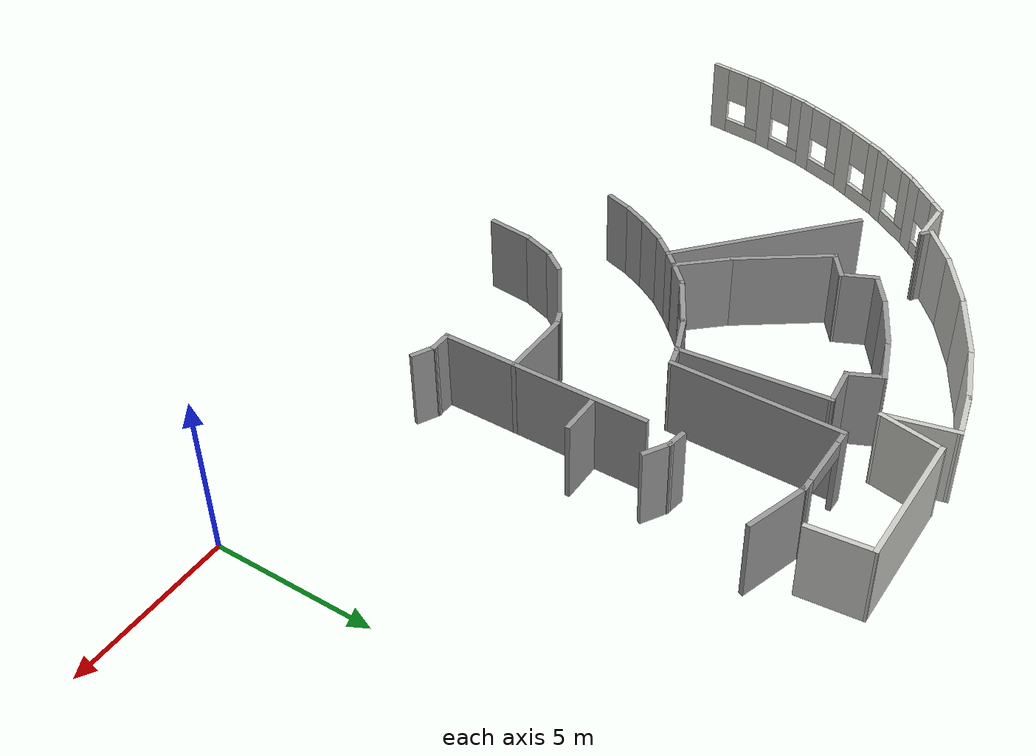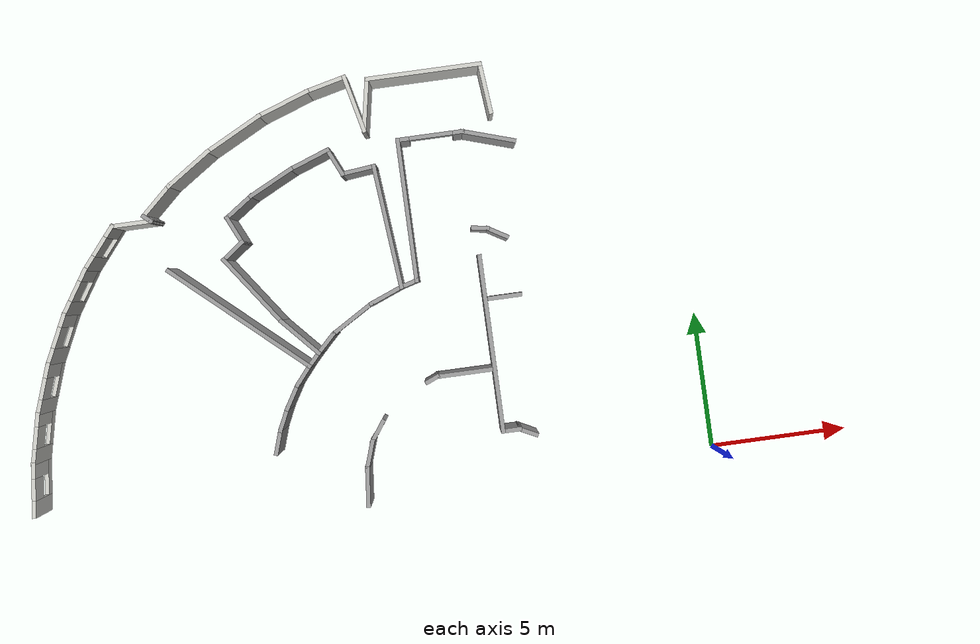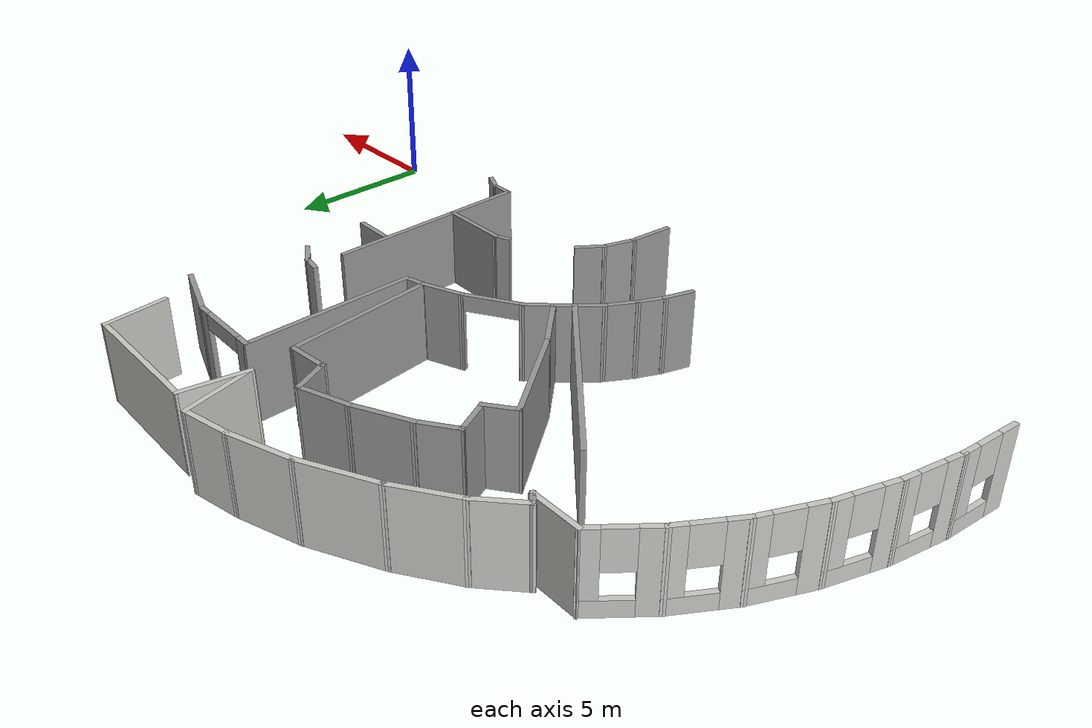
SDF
<sdf version="1.7">
 <model name="model">
  <pose>-4.1341 -0.059214 0 0 -0 0</pose>
  <link name="Wall_101">
   <collision name="Wall_101_Collision">
    <geometry><box><size>0.462824 0.15 2.5</size></box></geometry>
    <pose>0 0 1.25 0 -0 0</pose>
   </collision>
   <visual name="Wall_101_Visual">
    <pose>0 0 1.25 0 -0 0</pose>
    <geometry><box><size>0.462824 0.15 2.5</size></box></geometry>
    <material>
     <script><uri>file://media/materials/scripts/gazebo.material</uri><name>Gazebo/Grey</name></script>
     <ambient>1 1 1 1</ambient>
    </material>
    <meta><layer>0</layer></meta>
   </visual>
   <pose>-15.2732 11.179 0 0 -0 2.42042</pose>
  </link>
  <link name="Wall_102">
   <collision name="Wall_102_Collision">
    <geometry><box><size>1.56641 0.15 2.5</size></box></geometry>
    <pose>0 0 1.25 0 -0 0</pose>
   </collision>
   <visual name="Wall_102_Visual">
    <pose>0 0 1.25 0 -0 0</pose>
    <geometry><box><size>1.56641 0.15 2.5</size></box></geometry>
    <material>
     <script><uri>file://media/materials/scripts/gazebo.material</uri><name>Gazebo/CeilingTiled</name></script>
     <ambient>0.964706 1 0.972549 1</ambient>
    </material>
    <meta><layer>0</layer></meta>
   </visual>
   <pose>-14.8674 11.7595 0 0 -0 0.739454</pose>
  </link>
  <link name="Wall_103">
   <collision name="Wall_103_Collision">
    <geometry><box><size>2.03182 0.15 2.5</size></box></geometry>
    <pose>0 0 1.25 0 -0 0</pose>
   </collision>
   <visual name="Wall_103_Visual">
    <pose>0 0 1.25 0 -0 0</pose>
    <geometry><box><size>2.03182 0.15 2.5</size></box></geometry>
    <material>
     <script><uri>file://media/materials/scripts/gazebo.material</uri><name>Gazebo/CeilingTiled</name></script>
     <ambient>0.964706 1 0.972549 1</ambient>
    </material>
    <meta><layer>0</layer></meta>
   </visual>
   <pose>-13.5621 12.76 0 0 -0 0.589698</pose>
  </link>
  <link name="Wall_104">
   <collision name="Wall_104_Collision">
    <geometry><box><size>2.39757 0.15 2.5</size></box></geometry>
    <pose>0 0 1.25 0 -0 0</pose>
   </collision>
   <visual name="Wall_104_Visual">
    <pose>0 0 1.25 0 -0 0</pose>
    <geometry><box><size>2.39757 0.15 2.5</size></box></geometry>
    <material>
     <script><uri>file://media/materials/scripts/gazebo.material</uri><name>Gazebo/CeilingTiled</name></script>
     <ambient>0.964706 1 0.972549 1</ambient>
    </material>
    <meta><layer>0</layer></meta>
   </visual>
   <pose>-11.7796 13.795 0 0 -0 0.472801</pose>
  </link>
  <link name="Wall_106">
   <collision name="Wall_106_Collision">
    <geometry><box><size>2.09081 0.15 2.5</size></box></geometry>
    <pose>0 0 1.25 0 -0 0</pose>
   </collision>
   <visual name="Wall_106_Visual">
    <pose>0 0 1.25 0 -0 0</pose>
    <geometry><box><size>2.09081 0.15 2.5</size></box></geometry>
    <material>
     <script><uri>file://media/materials/scripts/gazebo.material</uri><name>Gazebo/CeilingTiled</name></script>
     <ambient>0.964706 1 0.972549 1</ambient>
    </material>
    <meta><layer>0</layer></meta>
   </visual>
   <pose>-9.86354 14.6283 0 0 -0 0.337731</pose>
  </link>
  <link name="Wall_107">
   <collision name="Wall_107_Collision">
    <geometry><box><size>1.57879 0.15 2.5</size></box></geometry>
    <pose>0 0 1.25 0 -0 0</pose>
   </collision>
   <visual name="Wall_107_Visual">
    <pose>0 0 1.25 0 -0 0</pose>
    <geometry><box><size>1.57879 0.15 2.5</size></box></geometry>
    <material>
     <script><uri>file://media/materials/scripts/gazebo.material</uri><name>Gazebo/CeilingTiled</name></script>
     <ambient>0.964706 1 0.972549 1</ambient>
    </material>
    <meta><layer>0</layer></meta>
   </visual>
   <pose>-8.2523 15.1124 0 0 -0 0.229576</pose>
  </link>
  <link name="Wall_108">
   <collision name="Wall_108_Collision">
    <geometry><box><size>2.19881 0.15 2.5</size></box></geometry>
    <pose>0 0 1.25 0 -0 0</pose>
   </collision>
   <visual name="Wall_108_Visual">
    <pose>0 0 1.25 0 -0 0</pose>
    <geometry><box><size>2.19881 0.15 2.5</size></box></geometry>
    <material>
     <script><uri>file://media/materials/scripts/gazebo.material</uri><name>Gazebo/CeilingTiled</name></script>
     <ambient>0.964706 1 0.972549 1</ambient>
    </material>
    <meta><layer>0</layer></meta>
   </visual>
   <pose>-7.32602 14.2769 0 0 -0 -1.34372</pose>
  </link>
  <link name="Wall_109">
   <collision name="Wall_109_Collision">
    <geometry><box><size>1.99778 0.15 2.5</size></box></geometry>
    <pose>0 0 1.25 0 -0 0</pose>
   </collision>
   <visual name="Wall_109_Visual">
    <pose>0 0 1.25 0 -0 0</pose>
    <geometry><box><size>1.99778 0.15 2.5</size></box></geometry>
    <material>
     <script><uri>file://media/materials/scripts/gazebo.material</uri><name>Gazebo/CeilingTiled</name></script>
     <ambient>0.964706 1 0.972549 1</ambient>
    </material>
    <meta><layer>0</layer></meta>
   </visual>
   <pose>-6.92148 14.1861 0 0 -0 1.38143</pose>
  </link>
  <link name="Wall_111">
   <collision name="Wall_111_Collision">
    <geometry><box><size>4.25 0.15 2.5</size></box></geometry>
    <pose>0 0 1.25 0 -0 0</pose>
   </collision>
   <visual name="Wall_111_Visual">
    <pose>0 0 1.25 0 -0 0</pose>
    <geometry><box><size>4.25 0.15 2.5</size></box></geometry>
    <material>
     <script><uri>file://media/materials/scripts/gazebo.material</uri><name>Gazebo/CeilingTiled</name></script>
     <ambient>0.964706 1 0.972549 1</ambient>
    </material>
    <meta><layer>0</layer></meta>
   </visual>
   <pose>-4.69757 15.0935 0 0 -0 0</pose>
  </link>
  <link name="Wall_112">
   <collision name="Wall_112_Collision">
    <geometry><box><size>1.93197 0.15 2.5</size></box></geometry>
    <pose>0 0 1.25 0 -0 0</pose>
   </collision>
   <visual name="Wall_112_Visual">
    <pose>0 0 1.25 0 -0 0</pose>
    <geometry><box><size>1.93197 0.15 2.5</size></box></geometry>
    <material>
     <script><uri>file://media/materials/scripts/gazebo.material</uri><name>Gazebo/CeilingTiled</name></script>
     <ambient>0.964706 1 0.972549 1</ambient>
    </material>
    <meta><layer>0</layer></meta>
   </visual>
   <pose>-2.56312 14.2065 0 0 -0 -1.47587</pose>
  </link>
  <link name="Wall_135">
   <collision name="Wall_135_Collision">
    <geometry><box><size>6.29486 0.15 2.5</size></box></geometry>
    <pose>0 0 1.25 0 -0 0</pose>
   </collision>
   <visual name="Wall_135_Visual">
    <pose>0 0 1.25 0 -0 0</pose>
    <geometry><box><size>6.29486 0.15 2.5</size></box></geometry>
    <material>
     <script><uri>file://media/materials/scripts/gazebo.material</uri><name>Gazebo/Grey</name></script>
     <ambient>0.929412 0.960784 0.933333 1</ambient>
    </material>
    <meta><layer>0</layer></meta>
   </visual>
   <pose>-12.4823 7.17089 0 0 -0 -0.727536</pose>
  </link>
  <link name="Wall_136">
   <collision name="Wall_136_Collision">
    <geometry><box><size>0.730094 0.15 2.5</size></box></geometry>
    <pose>0 0 1.25 0 -0 0</pose>
   </collision>
   <visual name="Wall_136_Visual">
    <pose>0 0 1.25 0 -0 0</pose>
    <geometry><box><size>0.730094 0.15 2.5</size></box></geometry>
    <material>
     <script><uri>file://media/materials/scripts/gazebo.material</uri><name>Gazebo/Grey</name></script>
     <ambient>1 1 1 1</ambient>
    </material>
    <meta><layer>0</layer></meta>
   </visual>
   <pose>-9.98937 5.33923 0 0 -0 0.817645</pose>
  </link>
  <link name="Wall_139">
   <collision name="Wall_139_Collision">
    <geometry><box><size>0.967544 0.15 2.5</size></box></geometry>
    <pose>0 0 1.25 0 -0 0</pose>
   </collision>
   <visual name="Wall_139_Visual">
    <pose>0 0 1.25 0 -0 0</pose>
    <geometry><box><size>0.967544 0.15 2.5</size></box></geometry>
    <material>
     <script><uri>file://media/materials/scripts/gazebo.material</uri><name>Gazebo/Grey</name></script>
     <ambient>0.929412 0.960784 0.933333 1</ambient>
    </material>
    <meta><layer>0</layer></meta>
   </visual>
   <pose>-10.4508 4.81478 0 0 -0 -2.27001</pose>
  </link>
  <link name="Wall_140">
   <collision name="Wall_140_Collision">
    <geometry><box><size>1.07537 0.15 2.5</size></box></geometry>
    <pose>0 0 1.25 0 -0 0</pose>
   </collision>
   <visual name="Wall_140_Visual">
    <pose>0 0 1.25 0 -0 0</pose>
    <geometry><box><size>1.07537 0.15 2.5</size></box></geometry>
    <material>
     <script><uri>file://media/materials/scripts/gazebo.material</uri><name>Gazebo/Grey</name></script>
     <ambient>0.929412 0.960784 0.933333 1</ambient>
    </material>
    <meta><layer>0</layer></meta>
   </visual>
   <pose>-10.952 4.10518 0 0 -0 -2.11122</pose>
  </link>
  <link name="Wall_141">
   <collision name="Wall_141_Collision">
    <geometry><box><size>0.954554 0.15 2.5</size></box></geometry>
    <pose>0 0 1.25 0 -0 0</pose>
   </collision>
   <visual name="Wall_141_Visual">
    <pose>0 0 1.25 0 -0 0</pose>
    <geometry><box><size>0.954554 0.15 2.5</size></box></geometry>
    <material>
     <script><uri>file://media/materials/scripts/gazebo.material</uri><name>Gazebo/Grey</name></script>
     <ambient>0.929412 0.960784 0.933333 1</ambient>
    </material>
    <meta><layer>0</layer></meta>
   </visual>
   <pose>-11.362 3.34474 0 0 -0 -2.01239</pose>
  </link>
  <link name="Wall_142">
   <collision name="Wall_142_Collision">
    <geometry><box><size>0.998979 0.15 2.5</size></box></geometry>
    <pose>0 0 1.25 0 -0 0</pose>
   </collision>
   <visual name="Wall_142_Visual">
    <pose>0 0 1.25 0 -0 0</pose>
    <geometry><box><size>0.998979 0.15 2.5</size></box></geometry>
    <material>
     <script><uri>file://media/materials/scripts/gazebo.material</uri><name>Gazebo/Grey</name></script>
     <ambient>0.929412 0.960784 0.933333 1</ambient>
    </material>
    <meta><layer>0</layer></meta>
   </visual>
   <pose>-11.6661 2.57769 0 0 -0 -1.88762</pose>
  </link>
  <link name="Wall_260">
   <collision name="Wall_260_Collision">
    <geometry><box><size>1.91837 0.15 2.5</size></box></geometry>
    <pose>0 0 1.25 0 -0 0</pose>
   </collision>
   <visual name="Wall_260_Visual">
    <pose>0 0 1.25 0 -0 0</pose>
    <geometry><box><size>1.91837 0.15 2.5</size></box></geometry>
    <material>
     <script><uri>file://media/materials/scripts/gazebo.material</uri><name>Gazebo/Grey</name></script>
     <ambient>1 1 1 1</ambient>
    </material>
    <meta><layer>0</layer></meta>
   </visual>
   <pose>-10.3841 6.20662 0 0 -0 2.30601</pose>
  </link>
  <link name="Wall_261">
   <collision name="Wall_261_Collision">
    <geometry><box><size>3.18479 0.15 2.5</size></box></geometry>
    <pose>0 0 1.25 0 -0 0</pose>
   </collision>
   <visual name="Wall_261_Visual">
    <pose>0 0 1.25 0 -0 0</pose>
    <geometry><box><size>3.18479 0.15 2.5</size></box></geometry>
    <material>
     <script><uri>file://media/materials/scripts/gazebo.material</uri><name>Gazebo/Grey</name></script>
     <ambient>1 1 1 1</ambient>
    </material>
    <meta><layer>0</layer></meta>
   </visual>
   <pose>-11.8566 8.09894 0 0 -0 2.18902</pose>
  </link>
  <link name="Wall_262">
   <collision name="Wall_262_Collision">
    <geometry><box><size>1.06788 0.15 2.5</size></box></geometry>
    <pose>0 0 1.25 0 -0 0</pose>
   </collision>
   <visual name="Wall_262_Visual">
    <pose>0 0 1.25 0 -0 0</pose>
    <geometry><box><size>1.06788 0.15 2.5</size></box></geometry>
    <material>
     <script><uri>file://media/materials/scripts/gazebo.material</uri><name>Gazebo/Grey</name></script>
     <ambient>1 1 1 1</ambient>
    </material>
    <meta><layer>0</layer></meta>
   </visual>
   <pose>-12.3657 9.60659 0 0 -0 0.631974</pose>
  </link>
  <link name="Wall_264">
   <collision name="Wall_264_Collision">
    <geometry><box><size>1.17754 0.15 2.5</size></box></geometry>
    <pose>0 0 1.25 0 -0 0</pose>
   </collision>
   <visual name="Wall_264_Visual">
    <pose>0 0 1.25 0 -0 0</pose>
    <geometry><box><size>1.17754 0.15 2.5</size></box></geometry>
    <material>
     <script><uri>file://media/materials/scripts/gazebo.material</uri><name>Gazebo/Grey</name></script>
     <ambient>1 1 1 1</ambient>
    </material>
    <meta><layer>0</layer></meta>
   </visual>
   <pose>-12.207 10.3459 0 0 -0 1.99515</pose>
  </link>
  <link name="Wall_265">
   <collision name="Wall_265_Collision">
    <geometry><box><size>1.31922 0.15 2.5</size></box></geometry>
    <pose>0 0 1.25 0 -0 0</pose>
   </collision>
   <visual name="Wall_265_Visual">
    <pose>0 0 1.25 0 -0 0</pose>
    <geometry><box><size>1.31922 0.15 2.5</size></box></geometry>
    <material>
     <script><uri>file://media/materials/scripts/gazebo.material</uri><name>Gazebo/Grey</name></script>
     <ambient>1 1 1 1</ambient>
    </material>
    <meta><layer>0</layer></meta>
   </visual>
   <pose>-11.9375 11.1464 0 0 -0 0.604599</pose>
  </link>
  <link name="Wall_266">
   <collision name="Wall_266_Collision">
    <geometry><box><size>1.88646 0.15 2.5</size></box></geometry>
    <pose>0 0 1.25 0 -0 0</pose>
   </collision>
   <visual name="Wall_266_Visual">
    <pose>0 0 1.25 0 -0 0</pose>
    <geometry><box><size>1.88646 0.15 2.5</size></box></geometry>
    <material>
     <script><uri>file://media/materials/scripts/gazebo.material</uri><name>Gazebo/Grey</name></script>
     <ambient>1 1 1 1</ambient>
    </material>
    <meta><layer>0</layer></meta>
   </visual>
   <pose>-10.6783 11.8635 0 0 -0 0.459143</pose>
  </link>
  <link name="Wall_267">
   <collision name="Wall_267_Collision">
    <geometry><box><size>1.6383 0.15 2.5</size></box></geometry>
    <pose>0 0 1.25 0 -0 0</pose>
   </collision>
   <visual name="Wall_267_Visual">
    <pose>0 0 1.25 0 -0 0</pose>
    <geometry><box><size>1.6383 0.15 2.5</size></box></geometry>
    <material>
     <script><uri>file://media/materials/scripts/gazebo.material</uri><name>Gazebo/Grey</name></script>
     <ambient>1 1 1 1</ambient>
    </material>
    <meta><layer>0</layer></meta>
   </visual>
   <pose>-9.20034 12.5019 0 0 -0 0.347767</pose>
  </link>
  <link name="Wall_268">
   <collision name="Wall_268_Collision">
    <geometry><box><size>1.16759 0.15 2.5</size></box></geometry>
    <pose>0 0 1.25 0 -0 0</pose>
   </collision>
   <visual name="Wall_268_Visual">
    <pose>0 0 1.25 0 -0 0</pose>
    <geometry><box><size>1.16759 0.15 2.5</size></box></geometry>
    <material>
     <script><uri>file://media/materials/scripts/gazebo.material</uri><name>Gazebo/Grey</name></script>
     <ambient>1 1 1 1</ambient>
    </material>
    <meta><layer>0</layer></meta>
   </visual>
   <pose>-8.29086 12.292 0 0 -0 -1.14559</pose>
  </link>
  <link name="Wall_269">
   <collision name="Wall_269_Collision">
    <geometry><box><size>1.31082 0.15 2.5</size></box></geometry>
    <pose>0 0 1.25 0 -0 0</pose>
   </collision>
   <visual name="Wall_269_Visual">
    <pose>0 0 1.25 0 -0 0</pose>
    <geometry><box><size>1.31082 0.15 2.5</size></box></geometry>
    <material>
     <script><uri>file://media/materials/scripts/gazebo.material</uri><name>Gazebo/Grey</name></script>
     <ambient>1 1 1 1</ambient>
    </material>
    <meta><layer>0</layer></meta>
   </visual>
   <pose>-7.5038 11.8897 0 0 -0 0.105666</pose>
  </link>
  <link name="Wall_270">
   <collision name="Wall_270_Collision">
    <geometry><box><size>4.61065 0.15 2.5</size></box></geometry>
    <pose>0 0 1.25 0 -0 0</pose>
   </collision>
   <visual name="Wall_270_Visual">
    <pose>0 0 1.25 0 -0 0</pose>
    <geometry><box><size>4.61065 0.15 2.5</size></box></geometry>
    <material>
     <script><uri>file://media/materials/scripts/gazebo.material</uri><name>Gazebo/Grey</name></script>
     <ambient>1 1 1 1</ambient>
    </material>
    <meta><layer>0</layer></meta>
   </visual>
   <pose>-6.7255 9.72973 0 0 -0 -1.48049</pose>
  </link>
  <link name="Wall_271">
   <collision name="Wall_271_Collision">
    <geometry><box><size>1.39068 0.15 2.5</size></box></geometry>
    <pose>0 0 1.25 0 -0 0</pose>
   </collision>
   <visual name="Wall_271_Visual">
    <pose>0 0 1.25 0 -0 0</pose>
    <geometry><box><size>1.39068 0.15 2.5</size></box></geometry>
    <material>
     <script><uri>file://media/materials/scripts/gazebo.material</uri><name>Gazebo/Grey</name></script>
     <ambient>1 1 1 1</ambient>
    </material>
    <meta><layer>0</layer></meta>
   </visual>
   <pose>-7.10153 7.28112 0 0 -0 -2.76632</pose>
  </link>
  <link name="Wall_273">
   <collision name="Wall_273_Collision">
    <geometry><box><size>0.75 0.15 2.5</size></box></geometry>
    <pose>0 0 1.25 0 -0 0</pose>
   </collision>
   <visual name="Wall_273_Visual">
    <pose>0 0 1.25 0 -0 0</pose>
    <geometry><box><size>0.75 0.15 2.5</size></box></geometry>
    <material>
     <script><uri>file://media/materials/scripts/gazebo.material</uri><name>Gazebo/Grey</name></script>
     <ambient>1 1 1 1</ambient>
    </material>
    <meta><layer>0</layer></meta>
   </visual>
   <pose>-6.23458 7.58613 0 0 -0 0.261799</pose>
  </link>
  <link name="Wall_275">
   <collision name="Wall_275_Collision">
    <geometry><box><size>5.25 0.15 2.5</size></box></geometry>
    <pose>0 0 1.25 0 -0 0</pose>
   </collision>
   <visual name="Wall_275_Visual">
    <pose>0 0 1.25 0 -0 0</pose>
    <geometry><box><size>5.25 0.15 2.5</size></box></geometry>
    <material>
     <script><uri>file://media/materials/scripts/gazebo.material</uri><name>Gazebo/Grey</name></script>
     <ambient>1 1 1 1</ambient>
    </material>
    <meta><layer>0</layer></meta>
   </visual>
   <pose>-5.9448 10.2138 0 0 -0 1.5708</pose>
  </link>
  <link name="Wall_276">
   <pose>-4.7698 12.7638 0 0 -0 0</pose>
   <visual name="Wall_276_Visual_0">
    <pose>-1.00458 0 1.25 0 -0 0</pose>
    <geometry><box><size>0.490836 0.15 2.5</size></box></geometry>
    <material>
     <script><uri>file://media/materials/scripts/gazebo.material</uri><name>Gazebo/Grey</name></script>
     <ambient>1 1 1 1</ambient>
    </material>
    <meta><layer>0</layer></meta>
   </visual>
   <collision name="Wall_276_Collision_0">
    <geometry><box><size>0.490836 0.15 2.5</size></box></geometry>
    <pose>-1.00458 0 1.25 0 -0 0</pose>
   </collision>
   <visual name="Wall_276_Visual_1">
    <pose>1.03647 0 1.25 0 -0 0</pose>
    <geometry><box><size>0.427052 0.15 2.5</size></box></geometry>
    <material>
     <script><uri>file://media/materials/scripts/gazebo.material</uri><name>Gazebo/Grey</name></script>
     <ambient>1 1 1 1</ambient>
    </material>
    <meta><layer>0</layer></meta>
   </visual>
   <collision name="Wall_276_Collision_1">
    <geometry><box><size>0.427052 0.15 2.5</size></box></geometry>
    <pose>1.03647 0 1.25 0 -0 0</pose>
   </collision>
   <visual name="Wall_276_Visual_2">
    <pose>0.031892 0 2.25 0 -0 0</pose>
    <geometry><box><size>1.58211 0.15 0.5</size></box></geometry>
    <material>
     <script><uri>file://media/materials/scripts/gazebo.material</uri><name>Gazebo/Grey</name></script>
     <ambient>1 1 1 1</ambient>
    </material>
    <meta><layer>0</layer></meta>
   </visual>
   <collision name="Wall_276_Collision_2">
    <geometry><box><size>1.58211 0.15 0.5</size></box></geometry>
    <pose>0.031892 0 2.25 0 -0 0</pose>
   </collision>
  </link>
  <link name="Wall_277">
   <collision name="Wall_277_Collision">
    <geometry><box><size>2.04723 0.15 2.5</size></box></geometry>
    <pose>0 0 1.25 0 -0 0</pose>
   </collision>
   <visual name="Wall_277_Visual">
    <pose>0 0 1.25 0 -0 0</pose>
    <geometry><box><size>2.04723 0.15 2.5</size></box></geometry>
    <material>
     <script><uri>file://media/materials/scripts/gazebo.material</uri><name>Gazebo/Grey</name></script>
     <ambient>1 1 1 1</ambient>
    </material>
    <meta><layer>0</layer></meta>
   </visual>
   <pose>-2.69124 12.4749 0 0 -0 -0.30942</pose>
  </link>
  <link name="Wall_288">
   <collision name="Wall_288_Collision">
    <geometry><box><size>0.6604 0.15 2.5</size></box></geometry>
    <pose>0 0 1.25 0 -0 0</pose>
   </collision>
   <visual name="Wall_288_Visual">
    <pose>0 0 1.25 0 -0 0</pose>
    <geometry><box><size>0.6604 0.15 2.5</size></box></geometry>
    <material>
     <script><uri>file://media/materials/scripts/gazebo.material</uri><name>Gazebo/Grey</name></script>
     <ambient>1 1 1 1</ambient>
    </material>
    <meta><layer>0</layer></meta>
   </visual>
   <pose>-3.42046 9.22796 0 0 -0 -0.168832</pose>
  </link>
  <link name="Wall_289">
   <collision name="Wall_289_Collision">
    <geometry><box><size>0.913863 0.15 2.5</size></box></geometry>
    <pose>0 0 1.25 0 -0 0</pose>
   </collision>
   <visual name="Wall_289_Visual">
    <pose>0 0 1.25 0 -0 0</pose>
    <geometry><box><size>0.913863 0.15 2.5</size></box></geometry>
    <material>
     <script><uri>file://media/materials/scripts/gazebo.material</uri><name>Gazebo/Grey</name></script>
     <ambient>1 1 1 1</ambient>
    </material>
    <meta><layer>0</layer></meta>
   </visual>
   <pose>-2.84013 8.99069 0 0 -0 -0.534001</pose>
  </link>
  <link name="Wall_297">
   <collision name="Wall_297_Collision">
    <geometry><box><size>6.5 0.15 2.5</size></box></geometry>
    <pose>0 0 1.25 0 -0 0</pose>
   </collision>
   <visual name="Wall_297_Visual">
    <pose>0 0 1.25 0 -0 0</pose>
    <geometry><box><size>6.5 0.15 2.5</size></box></geometry>
    <material>
     <script><uri>file://media/materials/scripts/gazebo.material</uri><name>Gazebo/Grey</name></script>
     <ambient>1 1 1 1</ambient>
    </material>
    <meta><layer>0</layer></meta>
   </visual>
   <pose>-3.58502 5.03881 0 0 -0 -1.5708</pose>
  </link>
  <link name="Wall_299">
   <collision name="Wall_299_Collision">
    <geometry><box><size>1.25 0.15 2.5</size></box></geometry>
    <pose>0 0 1.25 0 -0 0</pose>
   </collision>
   <visual name="Wall_299_Visual">
    <pose>0 0 1.25 0 -0 0</pose>
    <geometry><box><size>1.25 0.15 2.5</size></box></geometry>
    <material>
     <script><uri>file://media/materials/scripts/gazebo.material</uri><name>Gazebo/Grey</name></script>
     <ambient>1 1 1 1</ambient>
    </material>
    <meta><layer>0</layer></meta>
   </visual>
   <pose>-2.87412 6.66507 0 0 -0 0</pose>
  </link>
  <link name="Wall_302">
   <collision name="Wall_302_Collision">
    <geometry><box><size>0.75 0.15 2.5</size></box></geometry>
    <pose>0 0 1.25 0 -0 0</pose>
   </collision>
   <visual name="Wall_302_Visual">
    <pose>0 0 1.25 0 -0 0</pose>
    <geometry><box><size>0.75 0.15 2.5</size></box></geometry>
    <material>
     <script><uri>file://media/materials/scripts/gazebo.material</uri><name>Gazebo/Grey</name></script>
     <ambient>1 1 1 1</ambient>
    </material>
    <meta><layer>0</layer></meta>
   </visual>
   <pose>-3.28503 1.86381 0 0 -0 0</pose>
  </link>
  <link name="Wall_303">
   <collision name="Wall_303_Collision">
    <geometry><box><size>0.787599 0.15 2.5</size></box></geometry>
    <pose>0 0 1.25 0 -0 0</pose>
   </collision>
   <visual name="Wall_303_Visual">
    <pose>0 0 1.25 0 -0 0</pose>
    <geometry><box><size>0.787599 0.15 2.5</size></box></geometry>
    <material>
     <script><uri>file://media/materials/scripts/gazebo.material</uri><name>Gazebo/Grey</name></script>
     <ambient>1 1 1 1</ambient>
    </material>
    <meta><layer>0</layer></meta>
   </visual>
   <pose>-2.70044 1.72013 0 0 -0 -0.467553</pose>
  </link>
  <link name="Wall_327">
   <collision name="Wall_327_Collision">
    <geometry><box><size>1.4791 0.15 2.5</size></box></geometry>
    <pose>0 0 1.25 0 -0 0</pose>
   </collision>
   <visual name="Wall_327_Visual">
    <pose>0 0 1.25 0 -0 0</pose>
    <geometry><box><size>1.4791 0.15 2.5</size></box></geometry>
    <material>
     <script><uri>file://media/materials/scripts/gazebo.material</uri><name>Gazebo/Grey</name></script>
     <ambient>1 1 1 1</ambient>
    </material>
    <meta><layer>0</layer></meta>
   </visual>
   <pose>-8.68567 0.53453 0 0 -0 1.47113</pose>
  </link>
  <link name="Wall_329">
   <collision name="Wall_329_Collision">
    <geometry><box><size>1.14137 0.15 2.5</size></box></geometry>
    <pose>0 0 1.25 0 -0 0</pose>
   </collision>
   <visual name="Wall_329_Visual">
    <pose>0 0 1.25 0 -0 0</pose>
    <geometry><box><size>1.14137 0.15 2.5</size></box></geometry>
    <material>
     <script><uri>file://media/materials/scripts/gazebo.material</uri><name>Gazebo/Grey</name></script>
     <ambient>1 1 1 1</ambient>
    </material>
    <meta><layer>0</layer></meta>
   </visual>
   <pose>-8.46123 1.6655 0 0 -0 1.2457</pose>
  </link>
  <link name="Wall_330">
   <collision name="Wall_330_Collision">
    <geometry><box><size>0.964815 0.15 2.5</size></box></geometry>
    <pose>0 0 1.25 0 -0 0</pose>
   </collision>
   <visual name="Wall_330_Visual">
    <pose>0 0 1.25 0 -0 0</pose>
    <geometry><box><size>0.964815 0.15 2.5</size></box></geometry>
    <material>
     <script><uri>file://media/materials/scripts/gazebo.material</uri><name>Gazebo/Grey</name></script>
     <ambient>1 1 1 1</ambient>
    </material>
    <meta><layer>0</layer></meta>
   </visual>
   <pose>-8.06486 2.46585 0 0 -0 0.946773</pose>
  </link>
  <link name="Wall_332">
   <collision name="Wall_332_Collision">
    <geometry><box><size>0.565063 0.15 2.5</size></box></geometry>
    <pose>0 0 1.25 0 -0 0</pose>
   </collision>
   <visual name="Wall_332_Visual">
    <pose>0 0 1.25 0 -0 0</pose>
    <geometry><box><size>0.565063 0.15 2.5</size></box></geometry>
    <material>
     <script><uri>file://media/materials/scripts/gazebo.material</uri><name>Gazebo/Grey</name></script>
     <ambient>1 1 1 1</ambient>
    </material>
    <meta><layer>0</layer></meta>
   </visual>
   <pose>-5.86289 4.05285 0 0 -0 0.39234</pose>
  </link>
  <link name="Wall_333">
   <collision name="Wall_333_Collision">
    <geometry><box><size>2.23955 0.15 2.5</size></box></geometry>
    <pose>0 0 1.25 0 -0 0</pose>
   </collision>
   <visual name="Wall_333_Visual">
    <pose>0 0 1.25 0 -0 0</pose>
    <geometry><box><size>2.23955 0.15 2.5</size></box></geometry>
    <material>
     <script><uri>file://media/materials/scripts/gazebo.material</uri><name>Gazebo/Grey</name></script>
     <ambient>1 1 1 1</ambient>
    </material>
    <meta><layer>0</layer></meta>
   </visual>
   <pose>-4.62636 4.1322 0 0 -0 0</pose>
  </link>
  <link name="Wall_335">
   <collision name="Wall_335_Collision">
    <geometry><box><size>1 0.15 2.5</size></box></geometry>
    <pose>0 0 1.25 0 -0 0</pose>
   </collision>
   <visual name="Wall_335_Visual">
    <pose>0 0 1.25 0 -0 0</pose>
    <geometry><box><size>1 0.15 2.5</size></box></geometry>
    <material>
     <script><uri>file://media/materials/scripts/gazebo.material</uri><name>Gazebo/Grey</name></script>
     <ambient>1 1 1 1</ambient>
    </material>
    <meta><layer>0</layer></meta>
   </visual>
   <pose>-9.49047 5.85135 0 0 -0 0.785398</pose>
  </link>
  <link name="Wall_336">
   <pose>-8.43433 6.60281 0 0 -0 0.538045</pose>
   <visual name="Wall_336_Visual_0">
    <pose>-0.883843 0 1.25 0 -0 0</pose>
    <geometry><box><size>0.142213 0.15 2.5</size></box></geometry>
    <material>
     <script><uri>file://media/materials/scripts/gazebo.material</uri><name>Gazebo/Grey</name></script>
     <ambient>1 1 1 1</ambient>
    </material>
    <meta><layer>0</layer></meta>
   </visual>
   <collision name="Wall_336_Collision_0">
    <geometry><box><size>0.142213 0.15 2.5</size></box></geometry>
    <pose>-0.883843 0 1.25 0 -0 0</pose>
   </collision>
   <visual name="Wall_336_Visual_1">
    <pose>0.917568 0 1.25 0 -0 0</pose>
    <geometry><box><size>0.074763 0.15 2.5</size></box></geometry>
    <material>
     <script><uri>file://media/materials/scripts/gazebo.material</uri><name>Gazebo/Grey</name></script>
     <ambient>1 1 1 1</ambient>
    </material>
    <meta><layer>0</layer></meta>
   </visual>
   <collision name="Wall_336_Collision_1">
    <geometry><box><size>0.074763 0.15 2.5</size></box></geometry>
    <pose>0.917568 0 1.25 0 -0 0</pose>
   </collision>
   <visual name="Wall_336_Visual_2">
    <pose>0.033725 0 2.25 0 -0 0</pose>
    <geometry><box><size>1.69292 0.15 0.5</size></box></geometry>
    <material>
     <script><uri>file://media/materials/scripts/gazebo.material</uri><name>Gazebo/Grey</name></script>
     <ambient>1 1 1 1</ambient>
    </material>
    <meta><layer>0</layer></meta>
   </visual>
   <collision name="Wall_336_Collision_2">
    <geometry><box><size>1.69292 0.15 0.5</size></box></geometry>
    <pose>0.033725 0 2.25 0 -0 0</pose>
   </collision>
  </link>
  <link name="Wall_91">
   <pose>-20.6398 2.0286 0 0 -0 1.45455</pose>
   <visual name="Wall_91_Visual_0">
    <pose>-0.693534 0 1.25 0 -0 0</pose>
    <geometry><box><size>0.620627 0.15 2.5</size></box></geometry>
    <material>
     <script><uri>file://media/materials/scripts/gazebo.material</uri><name>Gazebo/CeilingTiled</name></script>
     <ambient>0 0.423529 0.960784 1</ambient>
    </material>
    <meta><layer>0</layer></meta>
   </visual>
   <collision name="Wall_91_Collision_0">
    <geometry><box><size>0.620627 0.15 2.5</size></box></geometry>
    <pose>-0.693534 0 1.25 0 -0 0</pose>
   </collision>
   <visual name="Wall_91_Visual_1">
    <pose>0.310313 0 0.25 0 -0 0</pose>
    <geometry><box><size>1.38707 0.15 0.5</size></box></geometry>
    <material>
     <script><uri>file://media/materials/scripts/gazebo.material</uri><name>Gazebo/CeilingTiled</name></script>
     <ambient>0 0.423529 0.960784 1</ambient>
    </material>
    <meta><layer>0</layer></meta>
   </visual>
   <collision name="Wall_91_Collision_1">
    <geometry><box><size>1.38707 0.15 0.5</size></box></geometry>
    <pose>0.310313 0 0.25 0 -0 0</pose>
   </collision>
   <visual name="Wall_91_Visual_2">
    <pose>0.710313 0 1.5 0 -0 0</pose>
    <geometry><box><size>0.587068 0.15 2</size></box></geometry>
    <material>
     <script><uri>file://media/materials/scripts/gazebo.material</uri><name>Gazebo/CeilingTiled</name></script>
     <ambient>0 0.423529 0.960784 1</ambient>
    </material>
    <meta><layer>0</layer></meta>
   </visual>
   <collision name="Wall_91_Collision_2">
    <geometry><box><size>0.587068 0.15 2</size></box></geometry>
    <pose>0.710313 0 1.5 0 -0 0</pose>
   </collision>
   <visual name="Wall_91_Visual_3">
    <pose>0.01678 0 1.9 0 -0 0</pose>
    <geometry><box><size>0.8 0.15 1.2</size></box></geometry>
    <material>
     <script><uri>file://media/materials/scripts/gazebo.material</uri><name>Gazebo/CeilingTiled</name></script>
     <ambient>0 0.423529 0.960784 1</ambient>
    </material>
    <meta><layer>0</layer></meta>
   </visual>
   <collision name="Wall_91_Collision_3">
    <geometry><box><size>0.8 0.15 1.2</size></box></geometry>
    <pose>0.01678 0 1.9 0 -0 0</pose>
   </collision>
  </link>
  <link name="Wall_92">
   <pose>-20.3308 3.83668 0 0 -0 1.34732</pose>
   <visual name="Wall_92_Visual_0">
    <pose>-0.661053 0 1.25 0 -0 0</pose>
    <geometry><box><size>0.644056 0.15 2.5</size></box></geometry>
    <material>
     <script><uri>file://media/materials/scripts/gazebo.material</uri><name>Gazebo/CeilingTiled</name></script>
     <ambient>0 0.423529 0.960784 1</ambient>
    </material>
    <meta><layer>0</layer></meta>
   </visual>
   <collision name="Wall_92_Collision_0">
    <geometry><box><size>0.644056 0.15 2.5</size></box></geometry>
    <pose>-0.661053 0 1.25 0 -0 0</pose>
   </collision>
   <visual name="Wall_92_Visual_1">
    <pose>0.322028 0 0.25 0 -0 0</pose>
    <geometry><box><size>1.32211 0.15 0.5</size></box></geometry>
    <material>
     <script><uri>file://media/materials/scripts/gazebo.material</uri><name>Gazebo/CeilingTiled</name></script>
     <ambient>0 0.423529 0.960784 1</ambient>
    </material>
    <meta><layer>0</layer></meta>
   </visual>
   <collision name="Wall_92_Collision_1">
    <geometry><box><size>1.32211 0.15 0.5</size></box></geometry>
    <pose>0.322028 0 0.25 0 -0 0</pose>
   </collision>
   <visual name="Wall_92_Visual_2">
    <pose>0.722028 0 1.5 0 -0 0</pose>
    <geometry><box><size>0.522107 0.15 2</size></box></geometry>
    <material>
     <script><uri>file://media/materials/scripts/gazebo.material</uri><name>Gazebo/CeilingTiled</name></script>
     <ambient>0 0.423529 0.960784 1</ambient>
    </material>
    <meta><layer>0</layer></meta>
   </visual>
   <collision name="Wall_92_Collision_2">
    <geometry><box><size>0.522107 0.15 2</size></box></geometry>
    <pose>0.722028 0 1.5 0 -0 0</pose>
   </collision>
   <visual name="Wall_92_Visual_3">
    <pose>0.060975 0 1.9 0 -0 0</pose>
    <geometry><box><size>0.8 0.15 1.2</size></box></geometry>
    <material>
     <script><uri>file://media/materials/scripts/gazebo.material</uri><name>Gazebo/CeilingTiled</name></script>
     <ambient>0 0.423529 0.960784 1</ambient>
    </material>
    <meta><layer>0</layer></meta>
   </visual>
   <collision name="Wall_92_Collision_3">
    <geometry><box><size>0.8 0.15 1.2</size></box></geometry>
    <pose>0.060975 0 1.9 0 -0 0</pose>
   </collision>
  </link>
  <link name="Wall_94">
   <pose>-19.827 5.59158 0 0 -0 1.23582</pose>
   <visual name="Wall_94_Visual_0">
    <pose>-0.685507 0 1.25 0 -0 0</pose>
    <geometry><box><size>0.620114 0.15 2.5</size></box></geometry>
    <material>
     <script><uri>file://media/materials/scripts/gazebo.material</uri><name>Gazebo/CeilingTiled</name></script>
     <ambient>0 0.423529 0.960784 1</ambient>
    </material>
    <meta><layer>0</layer></meta>
   </visual>
   <collision name="Wall_94_Collision_0">
    <geometry><box><size>0.620114 0.15 2.5</size></box></geometry>
    <pose>-0.685507 0 1.25 0 -0 0</pose>
   </collision>
   <visual name="Wall_94_Visual_1">
    <pose>0.310057 0 0.25 0 -0 0</pose>
    <geometry><box><size>1.37101 0.15 0.5</size></box></geometry>
    <material>
     <script><uri>file://media/materials/scripts/gazebo.material</uri><name>Gazebo/CeilingTiled</name></script>
     <ambient>0 0.423529 0.960784 1</ambient>
    </material>
    <meta><layer>0</layer></meta>
   </visual>
   <collision name="Wall_94_Collision_1">
    <geometry><box><size>1.37101 0.15 0.5</size></box></geometry>
    <pose>0.310057 0 0.25 0 -0 0</pose>
   </collision>
   <visual name="Wall_94_Visual_2">
    <pose>0.710057 0 1.5 0 -0 0</pose>
    <geometry><box><size>0.571013 0.15 2</size></box></geometry>
    <material>
     <script><uri>file://media/materials/scripts/gazebo.material</uri><name>Gazebo/CeilingTiled</name></script>
     <ambient>0 0.423529 0.960784 1</ambient>
    </material>
    <meta><layer>0</layer></meta>
   </visual>
   <collision name="Wall_94_Collision_2">
    <geometry><box><size>0.571013 0.15 2</size></box></geometry>
    <pose>0.710057 0 1.5 0 -0 0</pose>
   </collision>
   <visual name="Wall_94_Visual_3">
    <pose>0.02455 0 1.9 0 -0 0</pose>
    <geometry><box><size>0.8 0.15 1.2</size></box></geometry>
    <material>
     <script><uri>file://media/materials/scripts/gazebo.material</uri><name>Gazebo/CeilingTiled</name></script>
     <ambient>0 0.423529 0.960784 1</ambient>
    </material>
    <meta><layer>0</layer></meta>
   </visual>
   <collision name="Wall_94_Collision_3">
    <geometry><box><size>0.8 0.15 1.2</size></box></geometry>
    <pose>0.02455 0 1.9 0 -0 0</pose>
   </collision>
  </link>
  <link name="Wall_96">
   <pose>-19.1194 7.3083 0 0 -0 1.12503</pose>
   <visual name="Wall_96_Visual_0">
    <pose>-0.66864 0 1.25 0 -0 0</pose>
    <geometry><box><size>0.690914 0.15 2.5</size></box></geometry>
    <material>
     <script><uri>file://media/materials/scripts/gazebo.material</uri><name>Gazebo/CeilingTiled</name></script>
     <ambient>0 0.423529 0.960784 1</ambient>
    </material>
    <meta><layer>0</layer></meta>
   </visual>
   <collision name="Wall_96_Collision_0">
    <geometry><box><size>0.690914 0.15 2.5</size></box></geometry>
    <pose>-0.66864 0 1.25 0 -0 0</pose>
   </collision>
   <visual name="Wall_96_Visual_1">
    <pose>0.345457 0 0.25 0 -0 0</pose>
    <geometry><box><size>1.33728 0.15 0.5</size></box></geometry>
    <material>
     <script><uri>file://media/materials/scripts/gazebo.material</uri><name>Gazebo/CeilingTiled</name></script>
     <ambient>0 0.423529 0.960784 1</ambient>
    </material>
    <meta><layer>0</layer></meta>
   </visual>
   <collision name="Wall_96_Collision_1">
    <geometry><box><size>1.33728 0.15 0.5</size></box></geometry>
    <pose>0.345457 0 0.25 0 -0 0</pose>
   </collision>
   <visual name="Wall_96_Visual_2">
    <pose>0.745457 0 1.5 0 -0 0</pose>
    <geometry><box><size>0.53728 0.15 2</size></box></geometry>
    <material>
     <script><uri>file://media/materials/scripts/gazebo.material</uri><name>Gazebo/CeilingTiled</name></script>
     <ambient>0 0.423529 0.960784 1</ambient>
    </material>
    <meta><layer>0</layer></meta>
   </visual>
   <collision name="Wall_96_Collision_2">
    <geometry><box><size>0.53728 0.15 2</size></box></geometry>
    <pose>0.745457 0 1.5 0 -0 0</pose>
   </collision>
   <visual name="Wall_96_Visual_3">
    <pose>0.076817 0 1.9 0 -0 0</pose>
    <geometry><box><size>0.8 0.15 1.2</size></box></geometry>
    <material>
     <script><uri>file://media/materials/scripts/gazebo.material</uri><name>Gazebo/CeilingTiled</name></script>
     <ambient>0 0.423529 0.960784 1</ambient>
    </material>
    <meta><layer>0</layer></meta>
   </visual>
   <collision name="Wall_96_Collision_3">
    <geometry><box><size>0.8 0.15 1.2</size></box></geometry>
    <pose>0.076817 0 1.9 0 -0 0</pose>
   </collision>
  </link>
  <link name="Wall_97">
   <pose>-18.2278 8.90846 0 0 -0 0.99691</pose>
   <visual name="Wall_97_Visual_0">
    <pose>-0.661481 0 1.25 0 -0 0</pose>
    <geometry><box><size>0.619931 0.15 2.5</size></box></geometry>
    <material>
     <script><uri>file://media/materials/scripts/gazebo.material</uri><name>Gazebo/CeilingTiled</name></script>
     <ambient>0 0.423529 0.960784 1</ambient>
    </material>
    <meta><layer>0</layer></meta>
   </visual>
   <collision name="Wall_97_Collision_0">
    <geometry><box><size>0.619931 0.15 2.5</size></box></geometry>
    <pose>-0.661481 0 1.25 0 -0 0</pose>
   </collision>
   <visual name="Wall_97_Visual_1">
    <pose>0.309965 0 0.25 0 -0 0</pose>
    <geometry><box><size>1.32296 0.15 0.5</size></box></geometry>
    <material>
     <script><uri>file://media/materials/scripts/gazebo.material</uri><name>Gazebo/CeilingTiled</name></script>
     <ambient>0 0.423529 0.960784 1</ambient>
    </material>
    <meta><layer>0</layer></meta>
   </visual>
   <collision name="Wall_97_Collision_1">
    <geometry><box><size>1.32296 0.15 0.5</size></box></geometry>
    <pose>0.309965 0 0.25 0 -0 0</pose>
   </collision>
   <visual name="Wall_97_Visual_2">
    <pose>0.709965 0 1.5 0 -0 0</pose>
    <geometry><box><size>0.522961 0.15 2</size></box></geometry>
    <material>
     <script><uri>file://media/materials/scripts/gazebo.material</uri><name>Gazebo/CeilingTiled</name></script>
     <ambient>0 0.423529 0.960784 1</ambient>
    </material>
    <meta><layer>0</layer></meta>
   </visual>
   <collision name="Wall_97_Collision_2">
    <geometry><box><size>0.522961 0.15 2</size></box></geometry>
    <pose>0.709965 0 1.5 0 -0 0</pose>
   </collision>
   <visual name="Wall_97_Visual_3">
    <pose>0.048485 0 1.9 0 -0 0</pose>
    <geometry><box><size>0.8 0.15 1.2</size></box></geometry>
    <material>
     <script><uri>file://media/materials/scripts/gazebo.material</uri><name>Gazebo/CeilingTiled</name></script>
     <ambient>0 0.423529 0.960784 1</ambient>
    </material>
    <meta><layer>0</layer></meta>
   </visual>
   <collision name="Wall_97_Collision_3">
    <geometry><box><size>0.8 0.15 1.2</size></box></geometry>
    <pose>0.048485 0 1.9 0 -0 0</pose>
   </collision>
  </link>
  <link name="Wall_98">
   <pose>-17.1556 10.3685 0 0 -0 0.879239</pose>
   <visual name="Wall_98_Visual_0">
    <pose>-0.661468 0 1.25 0 -0 0</pose>
    <geometry><box><size>0.66336 0.15 2.5</size></box></geometry>
    <material>
     <script><uri>file://media/materials/scripts/gazebo.material</uri><name>Gazebo/CeilingTiled</name></script>
     <ambient>0 0.423529 0.960784 1</ambient>
    </material>
    <meta><layer>0</layer></meta>
   </visual>
   <collision name="Wall_98_Collision_0">
    <geometry><box><size>0.66336 0.15 2.5</size></box></geometry>
    <pose>-0.661468 0 1.25 0 -0 0</pose>
   </collision>
   <visual name="Wall_98_Visual_1">
    <pose>0.33168 0 0.25 0 -0 0</pose>
    <geometry><box><size>1.32294 0.15 0.5</size></box></geometry>
    <material>
     <script><uri>file://media/materials/scripts/gazebo.material</uri><name>Gazebo/CeilingTiled</name></script>
     <ambient>0 0.423529 0.960784 1</ambient>
    </material>
    <meta><layer>0</layer></meta>
   </visual>
   <collision name="Wall_98_Collision_1">
    <geometry><box><size>1.32294 0.15 0.5</size></box></geometry>
    <pose>0.33168 0 0.25 0 -0 0</pose>
   </collision>
   <visual name="Wall_98_Visual_2">
    <pose>0.73168 0 1.5 0 -0 0</pose>
    <geometry><box><size>0.522936 0.15 2</size></box></geometry>
    <material>
     <script><uri>file://media/materials/scripts/gazebo.material</uri><name>Gazebo/CeilingTiled</name></script>
     <ambient>0 0.423529 0.960784 1</ambient>
    </material>
    <meta><layer>0</layer></meta>
   </visual>
   <collision name="Wall_98_Collision_2">
    <geometry><box><size>0.522936 0.15 2</size></box></geometry>
    <pose>0.73168 0 1.5 0 -0 0</pose>
   </collision>
   <visual name="Wall_98_Visual_3">
    <pose>0.070212 0 1.9 0 -0 0</pose>
    <geometry><box><size>0.8 0.15 1.2</size></box></geometry>
    <material>
     <script><uri>file://media/materials/scripts/gazebo.material</uri><name>Gazebo/CeilingTiled</name></script>
     <ambient>0 0.423529 0.960784 1</ambient>
    </material>
    <meta><layer>0</layer></meta>
   </visual>
   <collision name="Wall_98_Collision_3">
    <geometry><box><size>0.8 0.15 1.2</size></box></geometry>
    <pose>0.070212 0 1.9 0 -0 0</pose>
   </collision>
  </link>
  <link name="Wall_99">
   <collision name="Wall_99_Collision">
    <geometry><box><size>1.56441 0.15 2.5</size></box></geometry>
    <pose>0 0 1.25 0 -0 0</pose>
   </collision>
   <visual name="Wall_99_Visual">
    <pose>0 0 1.25 0 -0 0</pose>
    <geometry><box><size>1.56441 0.15 2.5</size></box></geometry>
    <material>
     <script><uri>file://media/materials/scripts/gazebo.material</uri><name>Gazebo/CeilingTiled</name></script>
     <ambient>0.964706 1 0.972549 1</ambient>
    </material>
    <meta><layer>0</layer></meta>
   </visual>
   <pose>-15.8629 11.0757 0 0 -0 0</pose>
  </link>
  <static>1</static>
 </model>
</sdf>
